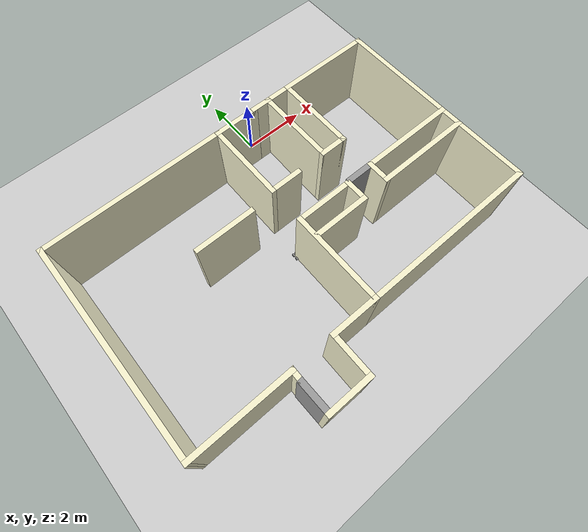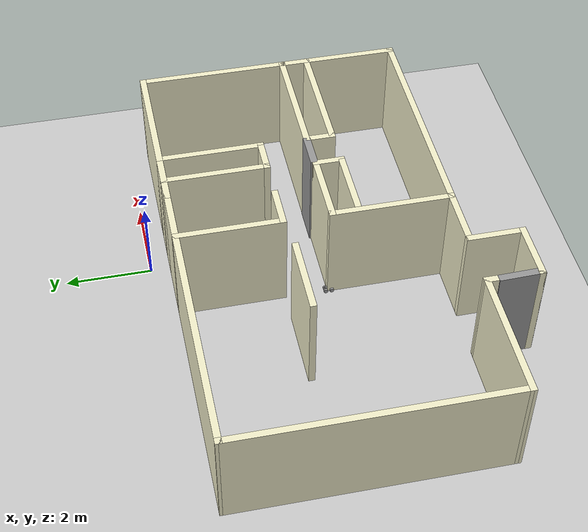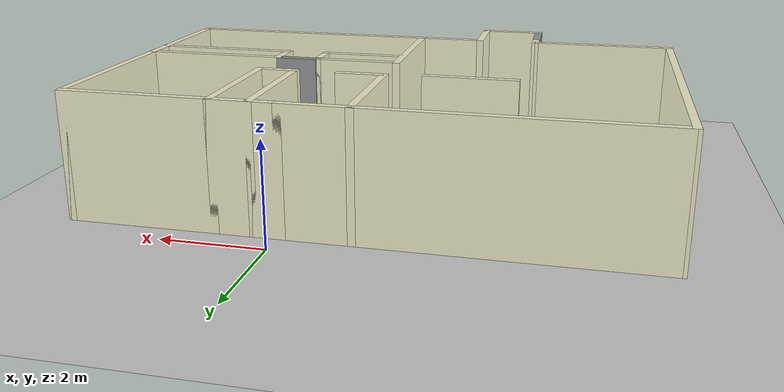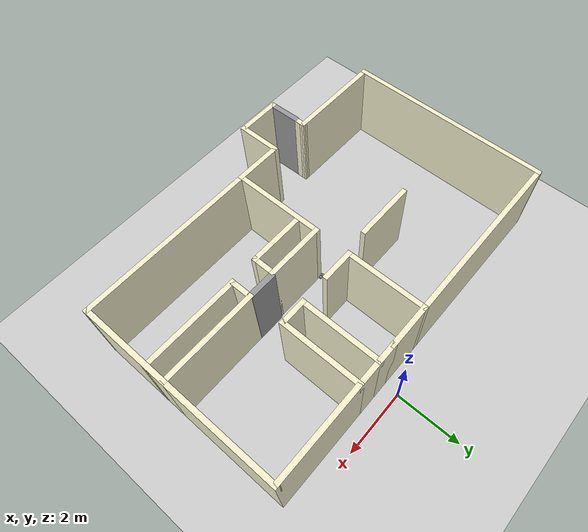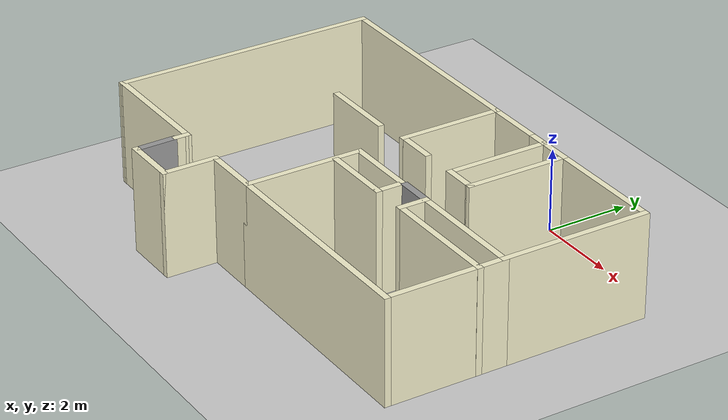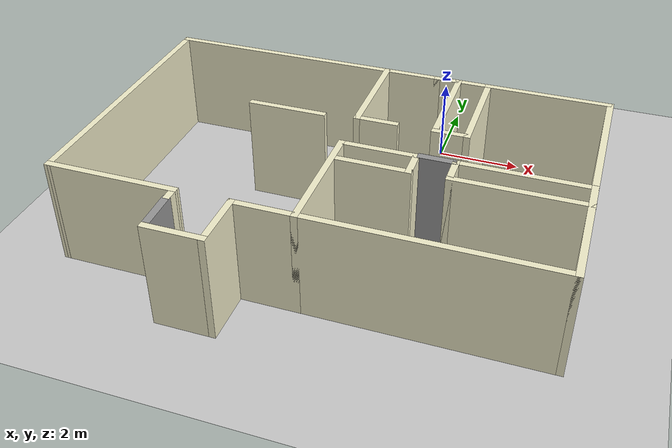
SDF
<sdf version="1.6">
 <world name="default">
  <model name="house">
   <pose>-1.46609 -4.03759 0.000136 1e-06 -5e-05 0</pose>
   <link name="Door_0">
    <collision name="Door_0_Collision">
     <geometry><box><size>0.9 0.17 2.5</size></box></geometry>
     <pose>0 0 1.25 0 -0 0</pose>
    </collision>
    <visual name="Door_0_Visual">
     <pose>0 0 1.25 0 -0 0</pose>
     <geometry><box><size>0.9 0.17 2.5</size></box></geometry>
     <material>
      <script><uri>file://media/materials/scripts/gazebo.material</uri><name>Gazebo/Grey</name></script>
     </material>
    </visual>
    <pose>-2.53496 -3.43764 0 0 -0 1.59446</pose>
    <inertial>
     <inertia><ixx>1</ixx><ixy>0</ixy><ixz>0</ixz><iyy>1</iyy><iyz>0</iyz><izz>1</izz></inertia>
     <mass>1</mass>
    </inertial>
   </link>
   <link name="Door_1">
    <collision name="Door_1_Collision">
     <geometry><box><size>0.85 0.17 2.5</size></box></geometry>
     <pose>0 0 1.25 0 -0 0</pose>
    </collision>
    <visual name="Door_1_Visual">
     <pose>0 0 1.25 0 -0 0</pose>
     <geometry><box><size>0.85 0.17 2.5</size></box></geometry>
     <material>
      <script><uri>file://media/materials/scripts/gazebo.material</uri><name>Gazebo/Grey</name></script>
     </material>
    </visual>
    <pose>2.18886 0.032322 0 0 -0 0</pose>
    <inertial>
     <inertia><ixx>1</ixx><ixy>0</ixy><ixz>0</ixz><iyy>1</iyy><iyz>0</iyz><izz>1</izz></inertia>
     <mass>1</mass>
    </inertial>
   </link>
   <link name="oscar::link_1">
    <inertial>
     <mass>1</mass>
     <inertia><ixx>0.145833</ixx><ixy>0</ixy><ixz>0</ixz><iyy>0.145833</iyy><iyz>0</iyz><izz>0.125</izz></inertia>
    </inertial>
    <pose>-0.030984 -0.02472 0.043 0 -1.57079 0</pose>
    <visual name="visual">
     <geometry><cylinder><radius>0.05</radius><length>0.05</length></cylinder></geometry>
     <material>
      <lighting>1</lighting>
      <script><uri>file://media/materials/scripts/gazebo.material</uri><name>Gazebo/Grey</name></script>
      <shader type="pixel"><normal_map>__default__</normal_map></shader>
      <ambient>0.3 0.3 0.3 1</ambient>
      <diffuse>0.7 0.7 0.7 1</diffuse>
      <specular>0.01 0.01 0.01 1</specular>
      <emissive>0 0 0 1</emissive>
     </material>
    </visual>
    <collision name="collision">
     <geometry><cylinder><radius>0.05</radius><length>0.05</length></cylinder></geometry>
     <surface>
      <friction>
       <ode><mu>1</mu><mu2>1</mu2><fdir1>0 0 0</fdir1><slip1>0</slip1><slip2>0</slip2></ode>
       <torsional>
        <coefficient>1</coefficient>
        <patch_radius>0</patch_radius>
        <surface_radius>0</surface_radius>
        <use_patch_radius>1</use_patch_radius>
        <ode><slip>0</slip></ode>
       </torsional>
      </friction>
      <bounce><restitution_coefficient>0</restitution_coefficient><threshold>1e+06</threshold></bounce>
      <contact>
       <collide_without_contact>0</collide_without_contact>
       <collide_without_contact_bitmask>1</collide_without_contact_bitmask>
       <collide_bitmask>1</collide_bitmask>
       <ode>
        <soft_cfm>0</soft_cfm>
        <soft_erp>0.2</soft_erp>
        <kp>1e+13</kp>
        <kd>1</kd>
        <max_vel>0.01</max_vel>
        <min_depth>0</min_depth>
       </ode>
       <bullet>
        <split_impulse>1</split_impulse>
        <split_impulse_penetration_threshold>-0.01</split_impulse_penetration_threshold>
        <soft_cfm>0</soft_cfm>
        <soft_erp>0.2</soft_erp>
        <kp>1e+13</kp>
        <kd>1</kd>
       </bullet>
      </contact>
     </surface>
    </collision>
   </link>
   <link name="oscar::link_1_clone">
    <inertial>
     <mass>1</mass>
     <inertia><ixx>0.145833</ixx><ixy>0</ixy><ixz>0</ixz><iyy>0.145833</iyy><iyz>0</iyz><izz>0.125</izz></inertia>
    </inertial>
    <pose>-0.030984 0.115279 0.043 0 -1.57079 0</pose>
    <visual name="visual">
     <geometry><cylinder><radius>0.05</radius><length>0.05</length></cylinder></geometry>
     <material>
      <lighting>1</lighting>
      <script><uri>file://media/materials/scripts/gazebo.material</uri><name>Gazebo/Grey</name></script>
      <shader type="pixel"><normal_map>__default__</normal_map></shader>
      <ambient>0.3 0.3 0.3 1</ambient>
      <diffuse>0.7 0.7 0.7 1</diffuse>
      <specular>0.01 0.01 0.01 1</specular>
      <emissive>0 0 0 1</emissive>
     </material>
    </visual>
    <collision name="collision">
     <geometry><cylinder><radius>0.05</radius><length>0.05</length></cylinder></geometry>
     <surface>
      <friction>
       <ode><mu>1</mu><mu2>1</mu2><fdir1>0 0 0</fdir1><slip1>0</slip1><slip2>0</slip2></ode>
       <torsional>
        <coefficient>1</coefficient>
        <patch_radius>0</patch_radius>
        <surface_radius>0</surface_radius>
        <use_patch_radius>1</use_patch_radius>
        <ode><slip>0</slip></ode>
       </torsional>
      </friction>
      <bounce><restitution_coefficient>0</restitution_coefficient><threshold>1e+06</threshold></bounce>
      <contact>
       <collide_without_contact>0</collide_without_contact>
       <collide_without_contact_bitmask>1</collide_without_contact_bitmask>
       <collide_bitmask>1</collide_bitmask>
       <ode>
        <soft_cfm>0</soft_cfm>
        <soft_erp>0.2</soft_erp>
        <kp>1e+13</kp>
        <kd>1</kd>
        <max_vel>0.01</max_vel>
        <min_depth>0</min_depth>
       </ode>
       <bullet>
        <split_impulse>1</split_impulse>
        <split_impulse_penetration_threshold>-0.01</split_impulse_penetration_threshold>
        <soft_cfm>0</soft_cfm>
        <soft_erp>0.2</soft_erp>
        <kp>1e+13</kp>
        <kd>1</kd>
       </bullet>
      </contact>
     </surface>
    </collision>
   </link>
   <link name="oscar::link_2">
    <inertial>
     <mass>1</mass>
     <inertia>
      <ixx>0.166667</ixx>
      <ixy>0</ixy>
      <ixz>0</ixz>
      <iyy>0.166667</iyy>
      <iyz>0</iyz>
      <izz>0.166667</izz>
     </inertia>
     <pose>0 0 0.05 0 -0 0</pose>
    </inertial>
    <pose>0.019016 0.025279 0.093 0 -0 0</pose>
    <visual name="visual">
     <geometry><box><size>0.05 0.2 0.05</size></box></geometry>
     <material>
      <lighting>1</lighting>
      <script><uri>file://media/materials/scripts/gazebo.material</uri><name>Gazebo/Grey</name></script>
      <shader type="pixel"><normal_map>__default__</normal_map></shader>
      <ambient>0.3 0.3 0.3 1</ambient>
      <diffuse>0.7 0.7 0.7 1</diffuse>
      <specular>0.01 0.01 0.01 1</specular>
      <emissive>0 0 0 1</emissive>
     </material>
    </visual>
    <collision name="collision">
     <geometry><box><size>1 1 1</size></box></geometry>
     <surface>
      <friction>
       <ode><mu>1</mu><mu2>1</mu2><fdir1>0 0 0</fdir1><slip1>0</slip1><slip2>0</slip2></ode>
       <torsional>
        <coefficient>1</coefficient>
        <patch_radius>0</patch_radius>
        <surface_radius>0</surface_radius>
        <use_patch_radius>1</use_patch_radius>
        <ode><slip>0</slip></ode>
       </torsional>
      </friction>
      <bounce><restitution_coefficient>0</restitution_coefficient><threshold>1e+06</threshold></bounce>
      <contact>
       <collide_without_contact>0</collide_without_contact>
       <collide_without_contact_bitmask>1</collide_without_contact_bitmask>
       <collide_bitmask>1</collide_bitmask>
       <ode>
        <soft_cfm>0</soft_cfm>
        <soft_erp>0.2</soft_erp>
        <kp>1e+13</kp>
        <kd>1</kd>
        <max_vel>0.01</max_vel>
        <min_depth>0</min_depth>
       </ode>
       <bullet>
        <split_impulse>1</split_impulse>
        <split_impulse_penetration_threshold>-0.01</split_impulse_penetration_threshold>
        <soft_cfm>0</soft_cfm>
        <soft_erp>0.2</soft_erp>
        <kp>1e+13</kp>
        <kd>1</kd>
       </bullet>
      </contact>
     </surface>
    </collision>
   </link>
   <link name="oscar::link_3">
    <inertial>
     <mass>1</mass>
     <inertia><ixx>0.145833</ixx><ixy>0</ixy><ixz>0</ixz><iyy>0.145833</iyy><iyz>0</iyz><izz>0.125</izz></inertia>
    </inertial>
    <pose>0.069016 -0.024721 0.053 0 1.5707 0</pose>
    <visual name="visual">
     <geometry><cylinder><radius>0.05</radius><length>0.05</length></cylinder></geometry>
     <material>
      <lighting>1</lighting>
      <script><uri>file://media/materials/scripts/gazebo.material</uri><name>Gazebo/Grey</name></script>
      <shader type="pixel"><normal_map>__default__</normal_map></shader>
      <ambient>0.3 0.3 0.3 1</ambient>
      <diffuse>0.7 0.7 0.7 1</diffuse>
      <specular>0.01 0.01 0.01 1</specular>
      <emissive>0 0 0 1</emissive>
     </material>
    </visual>
    <collision name="collision">
     <geometry><cylinder><radius>0.05</radius><length>0.05</length></cylinder></geometry>
     <surface>
      <friction>
       <ode><mu>1</mu><mu2>1</mu2><fdir1>0 0 0</fdir1><slip1>0</slip1><slip2>0</slip2></ode>
       <torsional>
        <coefficient>1</coefficient>
        <patch_radius>0</patch_radius>
        <surface_radius>0</surface_radius>
        <use_patch_radius>1</use_patch_radius>
        <ode><slip>0</slip></ode>
       </torsional>
      </friction>
      <bounce><restitution_coefficient>0</restitution_coefficient><threshold>1e+06</threshold></bounce>
      <contact>
       <collide_without_contact>0</collide_without_contact>
       <collide_without_contact_bitmask>1</collide_without_contact_bitmask>
       <collide_bitmask>1</collide_bitmask>
       <ode>
        <soft_cfm>0</soft_cfm>
        <soft_erp>0.2</soft_erp>
        <kp>1e+13</kp>
        <kd>1</kd>
        <max_vel>0.01</max_vel>
        <min_depth>0</min_depth>
       </ode>
       <bullet>
        <split_impulse>1</split_impulse>
        <split_impulse_penetration_threshold>-0.01</split_impulse_penetration_threshold>
        <soft_cfm>0</soft_cfm>
        <soft_erp>0.2</soft_erp>
        <kp>1e+13</kp>
        <kd>1</kd>
       </bullet>
      </contact>
     </surface>
    </collision>
   </link>
   <link name="oscar::link_3_clone">
    <inertial>
     <mass>1</mass>
     <inertia><ixx>0.145833</ixx><ixy>0</ixy><ixz>0</ixz><iyy>0.145833</iyy><iyz>0</iyz><izz>0.125</izz></inertia>
    </inertial>
    <pose>0.069016 0.115274 0.043 1.5708 -1.5707 1.5708</pose>
    <visual name="visual">
     <geometry><cylinder><radius>0.05</radius><length>0.05</length></cylinder></geometry>
     <material>
      <lighting>1</lighting>
      <script><uri>file://media/materials/scripts/gazebo.material</uri><name>Gazebo/Grey</name></script>
      <shader type="pixel"><normal_map>__default__</normal_map></shader>
      <ambient>0.3 0.3 0.3 1</ambient>
      <diffuse>0.7 0.7 0.7 1</diffuse>
      <specular>0.01 0.01 0.01 1</specular>
      <emissive>0 0 0 1</emissive>
     </material>
    </visual>
    <collision name="collision">
     <geometry><cylinder><radius>0.05</radius><length>0.05</length></cylinder></geometry>
     <surface>
      <friction>
       <ode><mu>1</mu><mu2>1</mu2><fdir1>0 0 0</fdir1><slip1>0</slip1><slip2>0</slip2></ode>
       <torsional>
        <coefficient>1</coefficient>
        <patch_radius>0</patch_radius>
        <surface_radius>0</surface_radius>
        <use_patch_radius>1</use_patch_radius>
        <ode><slip>0</slip></ode>
       </torsional>
      </friction>
      <bounce><restitution_coefficient>0</restitution_coefficient><threshold>1e+06</threshold></bounce>
      <contact>
       <collide_without_contact>0</collide_without_contact>
       <collide_without_contact_bitmask>1</collide_without_contact_bitmask>
       <collide_bitmask>1</collide_bitmask>
       <ode>
        <soft_cfm>0</soft_cfm>
        <soft_erp>0.2</soft_erp>
        <kp>1e+13</kp>
        <kd>1</kd>
        <max_vel>0.01</max_vel>
        <min_depth>0</min_depth>
       </ode>
       <bullet>
        <split_impulse>1</split_impulse>
        <split_impulse_penetration_threshold>-0.01</split_impulse_penetration_threshold>
        <soft_cfm>0</soft_cfm>
        <soft_erp>0.2</soft_erp>
        <kp>1e+13</kp>
        <kd>1</kd>
       </bullet>
      </contact>
     </surface>
    </collision>
   </link>
   <joint name="oscar::link_2_JOINT_18" type="revolute">
    <parent>oscar::link_2</parent>
    <child>oscar::link_3</child>
    <axis>
     <xyz>0 0 1</xyz>
     <use_parent_model_frame>0</use_parent_model_frame>
     <limit>
      <lower>-1.79769e+308</lower>
      <upper>1.79769e+308</upper>
      <effort>-1</effort>
      <velocity>-1</velocity>
     </limit>
     <dynamics>
      <spring_reference>0</spring_reference>
      <spring_stiffness>0</spring_stiffness>
      <damping>0</damping>
     </dynamics>
    </axis>
    <physics>
     <ode><limit><cfm>0</cfm><erp>0.2</erp></limit><suspension><cfm>0</cfm><erp>0.2</erp></suspension></ode>
    </physics>
   </joint>
   <joint name="oscar::link_2_JOINT_20" type="revolute">
    <parent>oscar::link_2</parent>
    <child>oscar::link_3_clone</child>
    <axis>
     <xyz>0 0 1</xyz>
     <use_parent_model_frame>0</use_parent_model_frame>
     <limit>
      <lower>-1.79769e+308</lower>
      <upper>1.79769e+308</upper>
      <effort>-1</effort>
      <velocity>-1</velocity>
     </limit>
     <dynamics>
      <spring_reference>0</spring_reference>
      <spring_stiffness>0</spring_stiffness>
      <damping>0</damping>
     </dynamics>
    </axis>
    <physics>
     <ode><limit><cfm>0</cfm><erp>0.2</erp></limit><suspension><cfm>0</cfm><erp>0.2</erp></suspension></ode>
    </physics>
   </joint>
   <joint name="oscar::link_2_JOINT_5" type="revolute">
    <parent>oscar::link_2</parent>
    <child>oscar::link_1</child>
    <axis>
     <xyz>0 0 1</xyz>
     <use_parent_model_frame>0</use_parent_model_frame>
     <limit>
      <lower>-1.79769e+308</lower>
      <upper>1.79769e+308</upper>
      <effort>-1</effort>
      <velocity>-1</velocity>
     </limit>
     <dynamics>
      <spring_reference>0</spring_reference>
      <spring_stiffness>0</spring_stiffness>
      <damping>0</damping>
      <friction>0</friction>
     </dynamics>
    </axis>
    <physics>
     <ode><limit><cfm>0</cfm><erp>0.2</erp></limit><suspension><cfm>0</cfm><erp>0.2</erp></suspension></ode>
    </physics>
   </joint>
   <joint name="oscar::link_2_JOINT_6" type="revolute">
    <parent>oscar::link_2</parent>
    <child>oscar::link_1_clone</child>
    <axis>
     <xyz>0 0 1</xyz>
     <use_parent_model_frame>0</use_parent_model_frame>
     <limit>
      <lower>-1.79769e+308</lower>
      <upper>1.79769e+308</upper>
      <effort>-1</effort>
      <velocity>-1</velocity>
     </limit>
     <dynamics>
      <spring_reference>0</spring_reference>
      <spring_stiffness>0</spring_stiffness>
      <damping>0</damping>
      <friction>0</friction>
     </dynamics>
    </axis>
    <physics>
     <ode><limit><cfm>0</cfm><erp>0.2</erp></limit><suspension><cfm>0</cfm><erp>0.2</erp></suspension></ode>
    </physics>
   </joint>
   <static>0</static>
   <link name="Wall_10">
    <collision name="Wall_10_Collision">
     <geometry><box><size>3.063 0.15 2.5</size></box></geometry>
     <pose>0 0 1.25 0 -0 0</pose>
    </collision>
    <visual name="Wall_10_Visual">
     <pose>0 0 1.25 0 -0 0</pose>
     <geometry><box><size>3.063 0.15 2.5</size></box></geometry>
     <material>
      <script><uri>file://media/materials/scripts/gazebo.material</uri><name>Gazebo/Grey</name></script>
      <ambient>0.956863 0.941176 0.8 1</ambient>
     </material>
     <meta><layer>0</layer></meta>
    </visual>
    <pose>-3.99041 -2.74041 0 0 -0 3.14159</pose>
    <inertial>
     <inertia><ixx>1</ixx><ixy>0</ixy><ixz>0</ixz><iyy>1</iyy><iyz>0</iyz><izz>1</izz></inertia>
     <mass>1</mass>
    </inertial>
   </link>
   <link name="Wall_12">
    <collision name="Wall_12_Collision">
     <geometry><box><size>6.4 0.15 2.5</size></box></geometry>
     <pose>0 0 1.25 0 -0 0</pose>
    </collision>
    <visual name="Wall_12_Visual">
     <pose>0 0 1.25 0 -0 0</pose>
     <geometry><box><size>6.4 0.15 2.5</size></box></geometry>
     <material>
      <script><uri>file://media/materials/scripts/gazebo.material</uri><name>Gazebo/Grey</name></script>
      <ambient>0.956863 0.941176 0.8 1</ambient>
     </material>
     <meta><layer>0</layer></meta>
    </visual>
    <pose>-5.43941 0.384587 0 0 -0 1.5684</pose>
    <inertial>
     <inertia><ixx>1</ixx><ixy>0</ixy><ixz>0</ixz><iyy>1</iyy><iyz>0</iyz><izz>1</izz></inertia>
     <mass>1</mass>
    </inertial>
   </link>
   <link name="Wall_14">
    <collision name="Wall_14_Collision">
     <geometry><box><size>5.649 0.15 2.5</size></box></geometry>
     <pose>0 0 1.25 0 -0 0</pose>
    </collision>
    <visual name="Wall_14_Visual">
     <pose>0 0 1.25 0 -0 0</pose>
     <geometry><box><size>5.649 0.15 2.5</size></box></geometry>
     <material>
      <script><uri>file://media/materials/scripts/gazebo.material</uri><name>Gazebo/Grey</name></script>
      <ambient>0.956863 0.941176 0.8 1</ambient>
     </material>
     <meta><layer>0</layer></meta>
    </visual>
    <pose>-2.68241 3.50959 0 0 -0 0</pose>
    <inertial>
     <inertia><ixx>1</ixx><ixy>0</ixy><ixz>0</ixz><iyy>1</iyy><iyz>0</iyz><izz>1</izz></inertia>
     <mass>1</mass>
    </inertial>
   </link>
   <link name="Wall_18">
    <collision name="Wall_18_Collision">
     <geometry><box><size>2.53945 0.15 2.5</size></box></geometry>
     <pose>0 0 1.25 0 -0 0</pose>
    </collision>
    <visual name="Wall_18_Visual">
     <pose>0 0 1.25 0 -0 0</pose>
     <geometry><box><size>2.53945 0.15 2.5</size></box></geometry>
     <material>
      <script><uri>file://media/materials/scripts/gazebo.material</uri><name>Gazebo/Grey</name></script>
      <ambient>0.956863 0.941176 0.8 1</ambient>
     </material>
     <meta><layer>0</layer></meta>
    </visual>
    <pose>0.06709 2.31509 0 0 -0 -1.5708</pose>
    <inertial>
     <inertia><ixx>1</ixx><ixy>0</ixy><ixz>0</ixz><iyy>1</iyy><iyz>0</iyz><izz>1</izz></inertia>
     <mass>1</mass>
    </inertial>
   </link>
   <link name="Wall_2">
    <collision name="Wall_2_Collision">
     <geometry><box><size>1.397 0.15 2.5</size></box></geometry>
     <pose>0 0 1.25 0 -0 0</pose>
    </collision>
    <visual name="Wall_2_Visual">
     <pose>0 0 1.25 0 -0 0</pose>
     <geometry><box><size>1.397 0.15 2.5</size></box></geometry>
     <material>
      <script><uri>file://media/materials/scripts/gazebo.material</uri><name>Gazebo/Grey</name></script>
      <ambient>0.956863 0.941176 0.8 1</ambient>
     </material>
     <meta><layer>0</layer></meta>
    </visual>
    <pose>-1.91041 -3.96241 0 0 -0 0</pose>
    <inertial>
     <inertia><ixx>1</ixx><ixy>0</ixy><ixz>0</ixz><iyy>1</iyy><iyz>0</iyz><izz>1</izz></inertia>
     <mass>1</mass>
    </inertial>
   </link>
   <link name="Wall_22">
    <collision name="Wall_22_Collision">
     <geometry><box><size>2.896 0.15 2.5</size></box></geometry>
     <pose>0 0 1.25 0 -0 0</pose>
    </collision>
    <visual name="Wall_22_Visual">
     <pose>0 0 1.25 0 -0 0</pose>
     <geometry><box><size>2.896 0.15 2.5</size></box></geometry>
     <material>
      <script><uri>file://media/materials/scripts/gazebo.material</uri><name>Gazebo/Grey</name></script>
      <ambient>0.956863 0.941176 0.8 1</ambient>
     </material>
     <meta><layer>0</layer></meta>
    </visual>
    <pose>0.06709 -1.36741 0 0 -0 1.5708</pose>
    <inertial>
     <inertia><ixx>1</ixx><ixy>0</ixy><ixz>0</ixz><iyy>1</iyy><iyz>0</iyz><izz>1</izz></inertia>
     <mass>1</mass>
    </inertial>
   </link>
   <link name="Wall_24">
    <collision name="Wall_24_Collision">
     <geometry><box><size>1.86 0.15 2.5</size></box></geometry>
     <pose>0 0 1.25 0 -0 0</pose>
    </collision>
    <visual name="Wall_24_Visual">
     <pose>0 0 1.25 0 -0 0</pose>
     <geometry><box><size>1.86 0.15 2.5</size></box></geometry>
     <material>
      <script><uri>file://media/materials/scripts/gazebo.material</uri><name>Gazebo/Grey</name></script>
      <ambient>0.956863 0.941176 0.8 1</ambient>
     </material>
     <meta><layer>0</layer></meta>
    </visual>
    <pose>-1.58791 1.00459 0 0 -0 3.14159</pose>
    <inertial>
     <inertia><ixx>1</ixx><ixy>0</ixy><ixz>0</ixz><iyy>1</iyy><iyz>0</iyz><izz>1</izz></inertia>
     <mass>1</mass>
    </inertial>
   </link>
   <link name="Wall_26">
    <collision name="Wall_26_Collision">
     <geometry><box><size>1.43 0.15 2.5</size></box></geometry>
     <pose>0 0 1.25 0 -0 0</pose>
    </collision>
    <visual name="Wall_26_Visual">
     <pose>0 0 1.25 0 -0 0</pose>
     <geometry><box><size>1.43 0.15 2.5</size></box></geometry>
     <material>
      <script><uri>file://media/materials/scripts/gazebo.material</uri><name>Gazebo/Grey</name></script>
      <ambient>0.956863 0.941176 0.8 1</ambient>
     </material>
     <meta><layer>0</layer></meta>
    </visual>
    <pose>0.70709 3.50959 0 0 -0 0</pose>
    <inertial>
     <inertia><ixx>1</ixx><ixy>0</ixy><ixz>0</ixz><iyy>1</iyy><iyz>0</iyz><izz>1</izz></inertia>
     <mass>1</mass>
    </inertial>
   </link>
   <link name="Wall_29">
    <collision name="Wall_29_Collision">
     <geometry><box><size>1.828 0.15 2.5</size></box></geometry>
     <pose>0 0 1.25 0 -0 0</pose>
    </collision>
    <visual name="Wall_29_Visual">
     <pose>0 0 1.25 0 -0 0</pose>
     <geometry><box><size>1.828 0.15 2.5</size></box></geometry>
     <material>
      <script><uri>file://media/materials/scripts/gazebo.material</uri><name>Gazebo/Grey</name></script>
      <ambient>0.956863 0.941176 0.8 1</ambient>
     </material>
     <meta><layer>0</layer></meta>
    </visual>
    <pose>0.90609 0.005587 0 0 -0 0</pose>
    <inertial>
     <inertia><ixx>1</ixx><ixy>0</ixy><ixz>0</ixz><iyy>1</iyy><iyz>0</iyz><izz>1</izz></inertia>
     <mass>1</mass>
    </inertial>
   </link>
   <link name="Wall_39">
    <collision name="Wall_39_Collision">
     <geometry><box><size>2.997 0.15 2.5</size></box></geometry>
     <pose>0 0 1.25 0 -0 0</pose>
    </collision>
    <visual name="Wall_39_Visual">
     <pose>0 0 1.25 0 -0 0</pose>
     <geometry><box><size>2.997 0.15 2.5</size></box></geometry>
     <material>
      <script><uri>file://media/materials/scripts/gazebo.material</uri><name>Gazebo/Grey</name></script>
      <ambient>0.956863 0.941176 0.8 1</ambient>
     </material>
     <meta><layer>0</layer></meta>
    </visual>
    <pose>4.02059 0.034587 0 0 -0 3.14159</pose>
    <inertial>
     <inertia><ixx>1</ixx><ixy>0</ixy><ixz>0</ixz><iyy>1</iyy><iyz>0</iyz><izz>1</izz></inertia>
     <mass>1</mass>
    </inertial>
   </link>
   <link name="Wall_4">
    <collision name="Wall_4_Collision">
     <geometry><box><size>1.37235 0.15 2.5</size></box></geometry>
     <pose>0 0 1.25 0 -0 0</pose>
    </collision>
    <visual name="Wall_4_Visual">
     <pose>0 0 1.25 0 -0 0</pose>
     <geometry><box><size>1.37235 0.15 2.5</size></box></geometry>
     <material>
      <script><uri>file://media/materials/scripts/gazebo.material</uri><name>Gazebo/Grey</name></script>
      <ambient>0.956863 0.941176 0.8 1</ambient>
     </material>
     <meta><layer>0</layer></meta>
    </visual>
    <pose>-1.28691 -3.35141 0 0 -0 1.5708</pose>
    <inertial>
     <inertia><ixx>1</ixx><ixy>0</ixy><ixz>0</ixz><iyy>1</iyy><iyz>0</iyz><izz>1</izz></inertia>
     <mass>1</mass>
    </inertial>
   </link>
   <link name="Wall_6">
    <collision name="Wall_6_Collision">
     <geometry><box><size>1.504 0.15 2.5</size></box></geometry>
     <pose>0 0 1.25 0 -0 0</pose>
    </collision>
    <visual name="Wall_6_Visual">
     <pose>0 0 1.25 0 -0 0</pose>
     <geometry><box><size>1.504 0.15 2.5</size></box></geometry>
     <material>
      <script><uri>file://media/materials/scripts/gazebo.material</uri><name>Gazebo/Grey</name></script>
      <ambient>0.956863 0.941176 0.8 1</ambient>
     </material>
     <meta><layer>0</layer></meta>
    </visual>
    <pose>-0.60991 -2.74041 0 0 -0 0</pose>
    <inertial>
     <inertia><ixx>1</ixx><ixy>0</ixy><ixz>0</ixz><iyy>1</iyy><iyz>0</iyz><izz>1</izz></inertia>
     <mass>1</mass>
    </inertial>
   </link>
   <link name="Wall_64">
    <collision name="Wall_64_Collision">
     <geometry><box><size>1.041 0.15 2.5</size></box></geometry>
     <pose>0 0 1.25 0 -0 0</pose>
    </collision>
    <visual name="Wall_64_Visual">
     <pose>0 0 1.25 0 -0 0</pose>
     <geometry><box><size>1.041 0.15 2.5</size></box></geometry>
     <material>
      <script><uri>file://media/materials/scripts/gazebo.material</uri><name>Gazebo/Grey</name></script>
      <ambient>0.956863 0.941176 0.8 1</ambient>
     </material>
     <meta><layer>0</layer></meta>
    </visual>
    <pose>0.51259 1.12059 0 0 -0 0</pose>
    <inertial>
     <inertia><ixx>1</ixx><ixy>0</ixy><ixz>0</ixz><iyy>1</iyy><iyz>0</iyz><izz>1</izz></inertia>
     <mass>1</mass>
    </inertial>
   </link>
   <link name="Wall_66">
    <collision name="Wall_66_Collision">
     <geometry><box><size>0.88 0.15 2.5</size></box></geometry>
     <pose>0 0 1.25 0 -0 0</pose>
    </collision>
    <visual name="Wall_66_Visual">
     <pose>0 0 1.25 0 -0 0</pose>
     <geometry><box><size>0.88 0.15 2.5</size></box></geometry>
     <material>
      <script><uri>file://media/materials/scripts/gazebo.material</uri><name>Gazebo/Grey</name></script>
      <ambient>0.956863 0.941176 0.8 1</ambient>
     </material>
     <meta><layer>0</layer></meta>
    </visual>
    <pose>2.23209 1.12859 0 0 -0 0</pose>
    <inertial>
     <inertia><ixx>1</ixx><ixy>0</ixy><ixz>0</ixz><iyy>1</iyy><iyz>0</iyz><izz>1</izz></inertia>
     <mass>1</mass>
    </inertial>
   </link>
   <link name="Wall_68">
    <collision name="Wall_68_Collision">
     <geometry><box><size>2.531 0.15 2.5</size></box></geometry>
     <pose>0 0 1.25 0 -0 0</pose>
    </collision>
    <visual name="Wall_68_Visual">
     <pose>0 0 1.25 0 -0 0</pose>
     <geometry><box><size>2.531 0.15 2.5</size></box></geometry>
     <material>
      <script><uri>file://media/materials/scripts/gazebo.material</uri><name>Gazebo/Grey</name></script>
      <ambient>0.956863 0.941176 0.8 1</ambient>
     </material>
     <meta><layer>0</layer></meta>
    </visual>
    <pose>1.86709 2.31909 0 0 -0 1.5708</pose>
    <inertial>
     <inertia><ixx>1</ixx><ixy>0</ixy><ixz>0</ixz><iyy>1</iyy><iyz>0</iyz><izz>1</izz></inertia>
     <mass>1</mass>
    </inertial>
   </link>
   <link name="Wall_70">
    <collision name="Wall_70_Collision">
     <geometry><box><size>0.67 0.15 2.5</size></box></geometry>
     <pose>0 0 1.25 0 -0 0</pose>
    </collision>
    <visual name="Wall_70_Visual">
     <pose>0 0 1.25 0 -0 0</pose>
     <geometry><box><size>0.67 0.15 2.5</size></box></geometry>
     <material>
      <script><uri>file://media/materials/scripts/gazebo.material</uri><name>Gazebo/Grey</name></script>
      <ambient>0.956863 0.941176 0.8 1</ambient>
     </material>
     <meta><layer>0</layer></meta>
    </visual>
    <pose>1.60709 3.50959 0 0 -0 0</pose>
    <inertial>
     <inertia><ixx>1</ixx><ixy>0</ixy><ixz>0</ixz><iyy>1</iyy><iyz>0</iyz><izz>1</izz></inertia>
     <mass>1</mass>
    </inertial>
   </link>
   <link name="Wall_72">
    <collision name="Wall_72_Collision">
     <geometry><box><size>2.531 0.15 2.5</size></box></geometry>
     <pose>0 0 1.25 0 -0 0</pose>
    </collision>
    <visual name="Wall_72_Visual">
     <pose>0 0 1.25 0 -0 0</pose>
     <geometry><box><size>2.531 0.15 2.5</size></box></geometry>
     <material>
      <script><uri>file://media/materials/scripts/gazebo.material</uri><name>Gazebo/Grey</name></script>
      <ambient>0.956863 0.941176 0.8 1</ambient>
     </material>
     <meta><layer>0</layer></meta>
    </visual>
    <pose>2.59709 2.31909 0 0 -0 1.5708</pose>
    <inertial>
     <inertia><ixx>1</ixx><ixy>0</ixy><ixz>0</ixz><iyy>1</iyy><iyz>0</iyz><izz>1</izz></inertia>
     <mass>1</mass>
    </inertial>
   </link>
   <link name="Wall_75">
    <collision name="Wall_75_Collision">
     <geometry><box><size>2.997 0.15 2.5</size></box></geometry>
     <pose>0 0 1.25 0 -0 0</pose>
    </collision>
    <visual name="Wall_75_Visual">
     <pose>0 0 1.25 0 -0 0</pose>
     <geometry><box><size>2.997 0.15 2.5</size></box></geometry>
     <material>
      <script><uri>file://media/materials/scripts/gazebo.material</uri><name>Gazebo/Grey</name></script>
      <ambient>0.956863 0.941176 0.8 1</ambient>
     </material>
     <meta><layer>0</layer></meta>
    </visual>
    <pose>4.02059 3.50959 0 0 -0 0</pose>
    <inertial>
     <inertia><ixx>1</ixx><ixy>0</ixy><ixz>0</ixz><iyy>1</iyy><iyz>0</iyz><izz>1</izz></inertia>
     <mass>1</mass>
    </inertial>
   </link>
   <link name="Wall_77">
    <collision name="Wall_77_Collision">
     <geometry><box><size>3.625 0.15 2.5</size></box></geometry>
     <pose>0 0 1.25 0 -0 0</pose>
    </collision>
    <visual name="Wall_77_Visual">
     <pose>0 0 1.25 0 -0 0</pose>
     <geometry><box><size>3.625 0.15 2.5</size></box></geometry>
     <material>
      <script><uri>file://media/materials/scripts/gazebo.material</uri><name>Gazebo/Grey</name></script>
      <ambient>0.956863 0.941176 0.8 1</ambient>
     </material>
     <meta><layer>0</layer></meta>
    </visual>
    <pose>5.44409 1.77209 0 0 -0 -1.5708</pose>
    <inertial>
     <inertia><ixx>1</ixx><ixy>0</ixy><ixz>0</ixz><iyy>1</iyy><iyz>0</iyz><izz>1</izz></inertia>
     <mass>1</mass>
    </inertial>
   </link>
   <link name="Wall_79">
    <collision name="Wall_79_Collision">
     <geometry><box><size>2.925 0.15 2.5</size></box></geometry>
     <pose>0 0 1.25 0 -0 0</pose>
    </collision>
    <visual name="Wall_79_Visual">
     <pose>0 0 1.25 0 -0 0</pose>
     <geometry><box><size>2.925 0.15 2.5</size></box></geometry>
     <material>
      <script><uri>file://media/materials/scripts/gazebo.material</uri><name>Gazebo/Grey</name></script>
      <ambient>0.956863 0.941176 0.8 1</ambient>
     </material>
     <meta><layer>0</layer></meta>
    </visual>
    <pose>5.44409 -1.35291 0 0 -0 -1.5708</pose>
    <inertial>
     <inertia><ixx>1</ixx><ixy>0</ixy><ixz>0</ixz><iyy>1</iyy><iyz>0</iyz><izz>1</izz></inertia>
     <mass>1</mass>
    </inertial>
   </link>
   <link name="Wall_81">
    <collision name="Wall_81_Collision">
     <geometry><box><size>5.527 0.15 2.5</size></box></geometry>
     <pose>0 0 1.25 0 -0 0</pose>
    </collision>
    <visual name="Wall_81_Visual">
     <pose>0 0 1.25 0 -0 0</pose>
     <geometry><box><size>5.527 0.15 2.5</size></box></geometry>
     <material>
      <script><uri>file://media/materials/scripts/gazebo.material</uri><name>Gazebo/Grey</name></script>
      <ambient>0.956863 0.941176 0.8 1</ambient>
     </material>
     <meta><layer>0</layer></meta>
    </visual>
    <pose>2.75559 -2.74041 0 0 -0 0</pose>
    <inertial>
     <inertia><ixx>1</ixx><ixy>0</ixy><ixz>0</ixz><iyy>1</iyy><iyz>0</iyz><izz>1</izz></inertia>
     <mass>1</mass>
    </inertial>
   </link>
   <link name="Wall_83">
    <collision name="Wall_83_Collision">
     <geometry><box><size>0.88 0.15 2.5</size></box></geometry>
     <pose>0 0 1.25 0 -0 0</pose>
    </collision>
    <visual name="Wall_83_Visual">
     <pose>0 0 1.25 0 -0 0</pose>
     <geometry><box><size>0.88 0.15 2.5</size></box></geometry>
     <material>
      <script><uri>file://media/materials/scripts/gazebo.material</uri><name>Gazebo/Grey</name></script>
      <ambient>0.956863 0.941176 0.8 1</ambient>
     </material>
     <meta><layer>0</layer></meta>
    </visual>
    <pose>2.23209 3.50959 0 0 -0 0</pose>
    <inertial>
     <inertia><ixx>1</ixx><ixy>0</ixy><ixz>0</ixz><iyy>1</iyy><iyz>0</iyz><izz>1</izz></inertia>
     <mass>1</mass>
    </inertial>
   </link>
   <link name="Wall_85">
    <collision name="Wall_85_Collision">
     <geometry><box><size>0.762 0.15 2.5</size></box></geometry>
     <pose>0 0 1.25 0 -0 0</pose>
    </collision>
    <visual name="Wall_85_Visual">
     <pose>0 0 1.25 0 -0 0</pose>
     <geometry><box><size>0.762 0.15 2.5</size></box></geometry>
     <material>
      <script><uri>file://media/materials/scripts/gazebo.material</uri><name>Gazebo/Grey</name></script>
      <ambient>0.956863 0.941176 0.8 1</ambient>
     </material>
     <meta><layer>0</layer></meta>
    </visual>
    <pose>1.74509 -0.300413 0 0 -0 -1.5708</pose>
    <inertial>
     <inertia><ixx>1</ixx><ixy>0</ixy><ixz>0</ixz><iyy>1</iyy><iyz>0</iyz><izz>1</izz></inertia>
     <mass>1</mass>
    </inertial>
   </link>
   <link name="Wall_87">
    <collision name="Wall_87_Collision">
     <geometry><box><size>1.75 0.15 2.5</size></box></geometry>
     <pose>0 0 1.25 0 -0 0</pose>
    </collision>
    <visual name="Wall_87_Visual">
     <pose>0 0 1.25 0 -0 0</pose>
     <geometry><box><size>1.75 0.15 2.5</size></box></geometry>
     <material>
      <script><uri>file://media/materials/scripts/gazebo.material</uri><name>Gazebo/Grey</name></script>
      <ambient>0.956863 0.941176 0.8 1</ambient>
     </material>
     <meta><layer>0</layer></meta>
    </visual>
    <pose>0.94509 -0.606413 0 0 -0 3.14159</pose>
    <inertial>
     <inertia><ixx>1</ixx><ixy>0</ixy><ixz>0</ixz><iyy>1</iyy><iyz>0</iyz><izz>1</izz></inertia>
     <mass>1</mass>
    </inertial>
   </link>
   <link name="Wall_89">
    <collision name="Wall_89_Collision">
     <geometry><box><size>0.762 0.15 2.5</size></box></geometry>
     <pose>0 0 1.25 0 -0 0</pose>
    </collision>
    <visual name="Wall_89_Visual">
     <pose>0 0 1.25 0 -0 0</pose>
     <geometry><box><size>0.762 0.15 2.5</size></box></geometry>
     <material>
      <script><uri>file://media/materials/scripts/gazebo.material</uri><name>Gazebo/Grey</name></script>
      <ambient>0.956863 0.941176 0.8 1</ambient>
     </material>
     <meta><layer>0</layer></meta>
    </visual>
    <pose>2.59709 -0.271413 0 0 -0 -1.5708</pose>
    <inertial>
     <inertia><ixx>1</ixx><ixy>0</ixy><ixz>0</ixz><iyy>1</iyy><iyz>0</iyz><izz>1</izz></inertia>
     <mass>1</mass>
    </inertial>
   </link>
   <link name="Wall_91">
    <collision name="Wall_91_Collision">
     <geometry><box><size>3 0.15 2.5</size></box></geometry>
     <pose>0 0 1.25 0 -0 0</pose>
    </collision>
    <visual name="Wall_91_Visual">
     <pose>0 0 1.25 0 -0 0</pose>
     <geometry><box><size>3 0.15 2.5</size></box></geometry>
     <material>
      <script><uri>file://media/materials/scripts/gazebo.material</uri><name>Gazebo/Grey</name></script>
      <ambient>0.956863 0.941176 0.8 1</ambient>
     </material>
     <meta><layer>0</layer></meta>
    </visual>
    <pose>4.02209 -0.577413 0 0 -0 0</pose>
    <inertial>
     <inertia><ixx>1</ixx><ixy>0</ixy><ixz>0</ixz><iyy>1</iyy><iyz>0</iyz><izz>1</izz></inertia>
     <mass>1</mass>
    </inertial>
   </link>
   <link name="Wall_93">
    <collision name="Wall_93_Collision">
     <geometry><box><size>0.16 0.15 2.5</size></box></geometry>
     <pose>0 0 1.25 0 -0 0</pose>
    </collision>
    <visual name="Wall_93_Visual">
     <pose>0 0 1.25 0 -0 0</pose>
     <geometry><box><size>0.16 0.15 2.5</size></box></geometry>
     <material>
      <script><uri>file://media/materials/scripts/gazebo.material</uri><name>Gazebo/Grey</name></script>
      <ambient>0.956863 0.941176 0.8 1</ambient>
     </material>
     <meta><layer>0</layer></meta>
    </visual>
    <pose>-2.53391 -3.95741 0 0 -0 1.5708</pose>
    <inertial>
     <inertia><ixx>1</ixx><ixy>0</ixy><ixz>0</ixz><iyy>1</iyy><iyz>0</iyz><izz>1</izz></inertia>
     <mass>1</mass>
    </inertial>
   </link>
   <link name="Wall_95">
    <collision name="Wall_95_Collision">
     <geometry><box><size>0.409839 0.15 2.5</size></box></geometry>
     <pose>0 0 1.25 0 -0 0</pose>
    </collision>
    <visual name="Wall_95_Visual">
     <pose>0 0 1.25 0 -0 0</pose>
     <geometry><box><size>0.409839 0.15 2.5</size></box></geometry>
     <material>
      <script><uri>file://media/materials/scripts/gazebo.material</uri><name>Gazebo/Grey</name></script>
      <ambient>0.956863 0.941176 0.8 1</ambient>
     </material>
     <meta><layer>0</layer></meta>
    </visual>
    <pose>-2.53444 -2.87033 0 0 -0 1.56675</pose>
    <inertial>
     <inertia><ixx>1</ixx><ixy>0</ixy><ixz>0</ixz><iyy>1</iyy><iyz>0</iyz><izz>1</izz></inertia>
     <mass>1</mass>
    </inertial>
   </link>
   <static>1</static>
  </model>
  <model name="ground_plane">
   <static>1</static>
   <link name="link">
    <collision name="collision">
     <geometry><plane><normal>0 0 1</normal><size>100 100</size></plane></geometry>
     <surface>
      <contact><collide_bitmask>65535</collide_bitmask></contact>
      <friction><ode><mu>100</mu><mu2>50</mu2></ode></friction>
     </surface>
    </collision>
    <visual name="visual">
     <cast_shadows>0</cast_shadows>
     <geometry><plane><normal>0 0 1</normal><size>100 100</size></plane></geometry>
     <material>
      <script><uri>file://media/materials/scripts/gazebo.material</uri><name>Gazebo/Grey</name></script>
     </material>
    </visual>
   </link>
  </model>
 </world>
</sdf>
